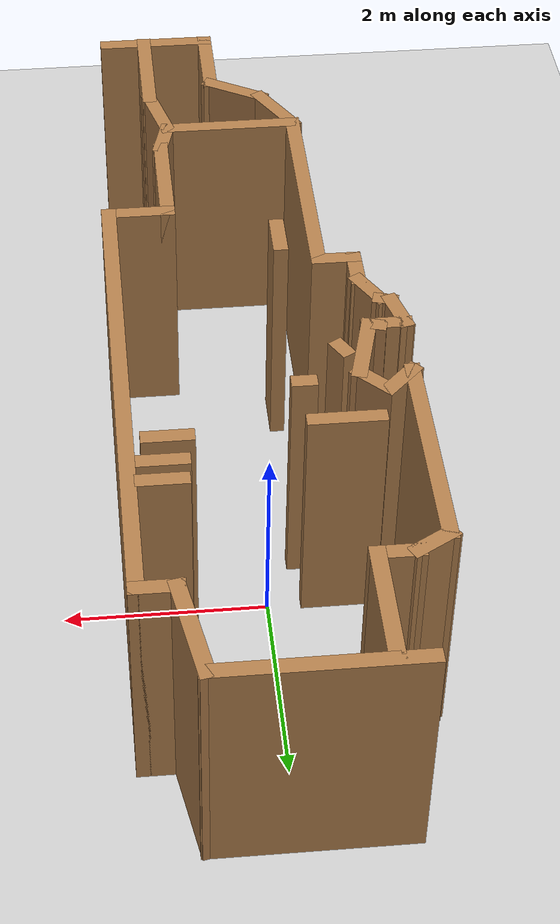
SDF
<sdf version="1.7">
 <world name="default">
  <light name="sun" type="directional">
   <pose>0 0 10 0 -0 0</pose>
   <diffuse>0.8 0.8 0.8 1</diffuse>
   <specular>0.2 0.2 0.2 1</specular>
   <attenuation>
    <range>1000</range>
    <constant>0.9</constant>
    <linear>0.01</linear>
    <quadratic>0.001</quadratic>
   </attenuation>
   <direction>-0.5 0.1 -0.9</direction>
   <spot><inner_angle>0</inner_angle><outer_angle>0</outer_angle><falloff>0</falloff></spot>
  </light>
  <model name="ground_plane">
   <static>1</static>
   <link name="link">
    <collision name="collision">
     <geometry><plane><normal>0 0 1</normal><size>100 100</size></plane></geometry>
     <surface>
      <contact><collide_bitmask>65535</collide_bitmask></contact>
      <friction><ode><mu>100</mu><mu2>50</mu2></ode></friction>
     </surface>
    </collision>
    <visual name="visual">
     <cast_shadows>0</cast_shadows>
     <geometry><plane><normal>0 0 1</normal><size>100 100</size></plane></geometry>
     <material>
      <script><uri>file://media/materials/scripts/gazebo.material</uri><name>Gazebo/Grey</name></script>
     </material>
    </visual>
   </link>
  </model>
  <gravity>0 0 -9.8</gravity>
  <magnetic_field>6e-06 2.3e-05 -4.2e-05</magnetic_field>
  <atmosphere type="adiabatic"/>
  <physics name="default_physics" default="0" type="ode">
   <max_step_size>0.001</max_step_size>
   <real_time_factor>1</real_time_factor>
   <real_time_update_rate>1000</real_time_update_rate>
  </physics>
  <scene><ambient>0.4 0.4 0.4 1</ambient><background>0.7 0.7 0.7 1</background><shadows>1</shadows></scene>
  <audio><device>default</device></audio>
  <spherical_coordinates>
   <surface_model>EARTH_WGS84</surface_model>
   <latitude_deg>0</latitude_deg>
   <longitude_deg>0</longitude_deg>
   <elevation>0</elevation>
   <heading_deg>0</heading_deg>
  </spherical_coordinates>
  <model name="map_12">
   <pose>-0.061819 -1.77159 0 0 -0 0</pose>
   <link name="Wall_0">
    <collision name="Wall_0_Collision">
     <geometry><box><size>2 0.15 2.5</size></box></geometry>
     <pose>0 0 1.25 0 -0 0</pose>
    </collision>
    <visual name="Wall_0_Visual">
     <pose>0 0 1.25 0 -0 0</pose>
     <geometry><box><size>2 0.15 2.5</size></box></geometry>
     <material>
      <script><uri>file://media/materials/scripts/gazebo.material</uri><name>Gazebo/Wood</name></script>
      <ambient>1 1 1 1</ambient>
     </material>
     <meta><layer>0</layer></meta>
    </visual>
    <pose>-0.059299 4.57153 0 0 -0 3.14159</pose>
   </link>
   <link name="Wall_14">
    <collision name="Wall_14_Collision">
     <geometry><box><size>0.5 0.15 2.5</size></box></geometry>
     <pose>0 0 1.25 0 -0 0</pose>
    </collision>
    <visual name="Wall_14_Visual">
     <pose>0 0 1.25 0 -0 0</pose>
     <geometry><box><size>0.5 0.15 2.5</size></box></geometry>
     <material>
      <script><uri>file://media/materials/scripts/gazebo.material</uri><name>Gazebo/Wood</name></script>
      <ambient>1 1 1 1</ambient>
     </material>
     <meta><layer>0</layer></meta>
    </visual>
    <pose>-1.21241 1.25993 0 0 -0 0.785398</pose>
   </link>
   <link name="Wall_15">
    <collision name="Wall_15_Collision">
     <geometry><box><size>0.5 0.15 2.5</size></box></geometry>
     <pose>0 0 1.25 0 -0 0</pose>
    </collision>
    <visual name="Wall_15_Visual">
     <pose>0 0 1.25 0 -0 0</pose>
     <geometry><box><size>0.5 0.15 2.5</size></box></geometry>
     <material>
      <script><uri>file://media/materials/scripts/gazebo.material</uri><name>Gazebo/Wood</name></script>
      <ambient>1 1 1 1</ambient>
     </material>
     <meta><layer>0</layer></meta>
    </visual>
    <pose>-0.964922 1.25993 0 0 -0 -0.785398</pose>
   </link>
   <link name="Wall_16">
    <collision name="Wall_16_Collision">
     <geometry><box><size>0.846046 0.15 2.5</size></box></geometry>
     <pose>0 0 1.25 0 -0 0</pose>
    </collision>
    <visual name="Wall_16_Visual">
     <pose>0 0 1.25 0 -0 0</pose>
     <geometry><box><size>0.846046 0.15 2.5</size></box></geometry>
     <material>
      <script><uri>file://media/materials/scripts/gazebo.material</uri><name>Gazebo/Wood</name></script>
      <ambient>1 1 1 1</ambient>
     </material>
     <meta><layer>0</layer></meta>
    </visual>
    <pose>-0.929567 0.799579 0 0 -0 -1.82758</pose>
   </link>
   <link name="Wall_19">
    <collision name="Wall_19_Collision">
     <geometry><box><size>0.5 0.15 2.5</size></box></geometry>
     <pose>0 0 1.25 0 -0 0</pose>
    </collision>
    <visual name="Wall_19_Visual">
     <pose>0 0 1.25 0 -0 0</pose>
     <geometry><box><size>0.5 0.15 2.5</size></box></geometry>
     <material>
      <script><uri>file://media/materials/scripts/gazebo.material</uri><name>Gazebo/Wood</name></script>
      <ambient>1 1 1 1</ambient>
     </material>
     <meta><layer>0</layer></meta>
    </visual>
    <pose>-1.19295 0.462967 0 0 -0 3.14159</pose>
   </link>
   <link name="Wall_2">
    <collision name="Wall_2_Collision">
     <geometry><box><size>1.25 0.15 2.5</size></box></geometry>
     <pose>0 0 1.25 0 -0 0</pose>
    </collision>
    <visual name="Wall_2_Visual">
     <pose>0 0 1.25 0 -0 0</pose>
     <geometry><box><size>1.25 0.15 2.5</size></box></geometry>
     <material>
      <script><uri>file://media/materials/scripts/gazebo.material</uri><name>Gazebo/Wood</name></script>
      <ambient>1 1 1 1</ambient>
     </material>
     <meta><layer>0</layer></meta>
    </visual>
    <pose>-0.683044 3.96119 0 0 -0 -1.5708</pose>
   </link>
   <link name="Wall_20">
    <collision name="Wall_20_Collision">
     <geometry><box><size>0.5 0.15 2.5</size></box></geometry>
     <pose>0 0 1.25 0 -0 0</pose>
    </collision>
    <visual name="Wall_20_Visual">
     <pose>0 0 1.25 0 -0 0</pose>
     <geometry><box><size>0.5 0.15 2.5</size></box></geometry>
     <material>
      <script><uri>file://media/materials/scripts/gazebo.material</uri><name>Gazebo/Wood</name></script>
      <ambient>1 1 1 1</ambient>
     </material>
     <meta><layer>0</layer></meta>
    </visual>
    <pose>-1.32266 0.29393 0 0 -0 -1.309</pose>
   </link>
   <link name="Wall_21">
    <collision name="Wall_21_Collision">
     <geometry><box><size>0.25 0.15 2.5</size></box></geometry>
     <pose>0 0 1.25 0 -0 0</pose>
    </collision>
    <visual name="Wall_21_Visual">
     <pose>0 0 1.25 0 -0 0</pose>
     <geometry><box><size>0.25 0.15 2.5</size></box></geometry>
     <material>
      <script><uri>file://media/materials/scripts/gazebo.material</uri><name>Gazebo/Wood</name></script>
      <ambient>1 1 1 1</ambient>
     </material>
     <meta><layer>0</layer></meta>
    </visual>
    <pose>-1.22907 0.111952 0 0 -0 -0.261799</pose>
   </link>
   <link name="Wall_22">
    <collision name="Wall_22_Collision">
     <geometry><box><size>0.5 0.15 2.5</size></box></geometry>
     <pose>0 0 1.25 0 -0 0</pose>
    </collision>
    <visual name="Wall_22_Visual">
     <pose>0 0 1.25 0 -0 0</pose>
     <geometry><box><size>0.5 0.15 2.5</size></box></geometry>
     <material>
      <script><uri>file://media/materials/scripts/gazebo.material</uri><name>Gazebo/Wood</name></script>
      <ambient>1 1 1 1</ambient>
     </material>
     <meta><layer>0</layer></meta>
    </visual>
    <pose>-1.09328 -0.052543 0 0 -0 -1.0472</pose>
   </link>
   <link name="Wall_23">
    <collision name="Wall_23_Collision">
     <geometry><box><size>0.5 0.15 2.5</size></box></geometry>
     <pose>0 0 1.25 0 -0 0</pose>
    </collision>
    <visual name="Wall_23_Visual">
     <pose>0 0 1.25 0 -0 0</pose>
     <geometry><box><size>0.5 0.15 2.5</size></box></geometry>
     <material>
      <script><uri>file://media/materials/scripts/gazebo.material</uri><name>Gazebo/Wood</name></script>
      <ambient>1 1 1 1</ambient>
     </material>
     <meta><layer>0</layer></meta>
    </visual>
    <pose>-1.00578 -0.379098 0 0 -0 -1.5708</pose>
   </link>
   <link name="Wall_24">
    <collision name="Wall_24_Collision">
     <geometry><box><size>0.5 0.15 2.5</size></box></geometry>
     <pose>0 0 1.25 0 -0 0</pose>
    </collision>
    <visual name="Wall_24_Visual">
     <pose>0 0 1.25 0 -0 0</pose>
     <geometry><box><size>0.5 0.15 2.5</size></box></geometry>
     <material>
      <script><uri>file://media/materials/scripts/gazebo.material</uri><name>Gazebo/Wood</name></script>
      <ambient>1 1 1 1</ambient>
     </material>
     <meta><layer>0</layer></meta>
    </visual>
    <pose>-0.830776 -0.554098 0 0 -0 0</pose>
   </link>
   <link name="Wall_25">
    <collision name="Wall_25_Collision">
     <geometry><box><size>2.5 0.15 2.5</size></box></geometry>
     <pose>0 0 1.25 0 -0 0</pose>
    </collision>
    <visual name="Wall_25_Visual">
     <pose>0 0 1.25 0 -0 0</pose>
     <geometry><box><size>2.5 0.15 2.5</size></box></geometry>
     <material>
      <script><uri>file://media/materials/scripts/gazebo.material</uri><name>Gazebo/Wood</name></script>
      <ambient>1 1 1 1</ambient>
     </material>
     <meta><layer>0</layer></meta>
    </visual>
    <pose>-0.655776 -1.7291 0 0 -0 -1.5708</pose>
   </link>
   <link name="Wall_26">
    <collision name="Wall_26_Collision">
     <geometry><box><size>1.5 0.15 2.5</size></box></geometry>
     <pose>0 0 1.25 0 -0 0</pose>
    </collision>
    <visual name="Wall_26_Visual">
     <pose>0 0 1.25 0 -0 0</pose>
     <geometry><box><size>1.5 0.15 2.5</size></box></geometry>
     <material>
      <script><uri>file://media/materials/scripts/gazebo.material</uri><name>Gazebo/Wood</name></script>
      <ambient>1 1 1 1</ambient>
     </material>
     <meta><layer>0</layer></meta>
    </visual>
    <pose>0.019224 -2.9041 0 0 -0 0</pose>
   </link>
   <link name="Wall_27">
    <collision name="Wall_27_Collision">
     <geometry><box><size>0.5 0.15 2.5</size></box></geometry>
     <pose>0 0 1.25 0 -0 0</pose>
    </collision>
    <visual name="Wall_27_Visual">
     <pose>0 0 1.25 0 -0 0</pose>
     <geometry><box><size>0.5 0.15 2.5</size></box></geometry>
     <material>
      <script><uri>file://media/materials/scripts/gazebo.material</uri><name>Gazebo/Wood</name></script>
      <ambient>1 1 1 1</ambient>
     </material>
     <meta><layer>0</layer></meta>
    </visual>
    <pose>0.739517 -2.73506 0 0 -0 1.309</pose>
   </link>
   <link name="Wall_28">
    <collision name="Wall_28_Collision">
     <geometry><box><size>1.25 0.15 2.5</size></box></geometry>
     <pose>0 0 1.25 0 -0 0</pose>
    </collision>
    <visual name="Wall_28_Visual">
     <pose>0 0 1.25 0 -0 0</pose>
     <geometry><box><size>1.25 0.15 2.5</size></box></geometry>
     <material>
      <script><uri>file://media/materials/scripts/gazebo.material</uri><name>Gazebo/Wood</name></script>
      <ambient>1 1 1 1</ambient>
     </material>
     <meta><layer>0</layer></meta>
    </visual>
    <pose>0.784811 -2.01602 0 0 -0 1.5708</pose>
   </link>
   <link name="Wall_3">
    <collision name="Wall_3_Collision">
     <geometry><box><size>0.5 0.15 2.5</size></box></geometry>
     <pose>0 0 1.25 0 -0 0</pose>
    </collision>
    <visual name="Wall_3_Visual">
     <pose>0 0 1.25 0 -0 0</pose>
     <geometry><box><size>0.5 0.15 2.5</size></box></geometry>
     <material>
      <script><uri>file://media/materials/scripts/gazebo.material</uri><name>Gazebo/Wood</name></script>
      <ambient>1 1 1 1</ambient>
     </material>
     <meta><layer>0</layer></meta>
    </visual>
    <pose>-0.858044 3.41119 0 0 -0 3.14159</pose>
   </link>
   <link name="Wall_33">
    <collision name="Wall_33_Collision">
     <geometry><box><size>0.75 0.15 2.5</size></box></geometry>
     <pose>0 0 1.25 0 -0 0</pose>
    </collision>
    <visual name="Wall_33_Visual">
     <pose>0 0 1.25 0 -0 0</pose>
     <geometry><box><size>0.75 0.15 2.5</size></box></geometry>
     <material>
      <script><uri>file://media/materials/scripts/gazebo.material</uri><name>Gazebo/Wood</name></script>
      <ambient>1 1 1 1</ambient>
     </material>
     <meta><layer>0</layer></meta>
    </visual>
    <pose>1.08481 -1.46602 0 0 -0 0</pose>
   </link>
   <link name="Wall_34">
    <collision name="Wall_34_Collision">
     <geometry><box><size>5.25 0.15 2.5</size></box></geometry>
     <pose>0 0 1.25 0 -0 0</pose>
    </collision>
    <visual name="Wall_34_Visual">
     <pose>0 0 1.25 0 -0 0</pose>
     <geometry><box><size>5.25 0.15 2.5</size></box></geometry>
     <material>
      <script><uri>file://media/materials/scripts/gazebo.material</uri><name>Gazebo/Wood</name></script>
      <ambient>1 1 1 1</ambient>
     </material>
     <meta><layer>0</layer></meta>
    </visual>
    <pose>1.38481 1.08398 0 0 -0 1.5708</pose>
   </link>
   <link name="Wall_35">
    <collision name="Wall_35_Collision">
     <geometry><box><size>0.5 0.15 2.5</size></box></geometry>
     <pose>0 0 1.25 0 -0 0</pose>
    </collision>
    <visual name="Wall_35_Visual">
     <pose>0 0 1.25 0 -0 0</pose>
     <geometry><box><size>0.5 0.15 2.5</size></box></geometry>
     <material>
      <script><uri>file://media/materials/scripts/gazebo.material</uri><name>Gazebo/Wood</name></script>
      <ambient>1 1 1 1</ambient>
     </material>
     <meta><layer>0</layer></meta>
    </visual>
    <pose>1.20981 3.63398 0 0 -0 3.14159</pose>
   </link>
   <link name="Wall_36">
    <collision name="Wall_36_Collision">
     <geometry><box><size>1.10268 0.15 2.5</size></box></geometry>
     <pose>0 0 1.25 0 -0 0</pose>
    </collision>
    <visual name="Wall_36_Visual">
     <pose>0 0 1.25 0 -0 0</pose>
     <geometry><box><size>1.10268 0.15 2.5</size></box></geometry>
     <material>
      <script><uri>file://media/materials/scripts/gazebo.material</uri><name>Gazebo/Wood</name></script>
      <ambient>1 1 1 1</ambient>
     </material>
     <meta><layer>0</layer></meta>
    </visual>
    <pose>0.950256 4.10275 0 0 -0 1.74925</pose>
   </link>
   <link name="Wall_39">
    <collision name="Wall_39_Collision">
     <geometry><box><size>0.75 0.15 2.5</size></box></geometry>
     <pose>0 0 1.25 0 -0 0</pose>
    </collision>
    <visual name="Wall_39_Visual">
     <pose>0 0 1.25 0 -0 0</pose>
     <geometry><box><size>0.75 0.15 2.5</size></box></geometry>
     <material>
      <script><uri>file://media/materials/scripts/gazebo.material</uri><name>Gazebo/Wood</name></script>
      <ambient>1 1 1 1</ambient>
     </material>
     <meta><layer>0</layer></meta>
    </visual>
    <pose>-0.505776 -3.16391 0 0 -0 -1.0472</pose>
   </link>
   <link name="Wall_4">
    <collision name="Wall_4_Collision">
     <geometry><box><size>0.5 0.15 2.5</size></box></geometry>
     <pose>0 0 1.25 0 -0 0</pose>
    </collision>
    <visual name="Wall_4_Visual">
     <pose>0 0 1.25 0 -0 0</pose>
     <geometry><box><size>0.5 0.15 2.5</size></box></geometry>
     <material>
      <script><uri>file://media/materials/scripts/gazebo.material</uri><name>Gazebo/Wood</name></script>
      <ambient>1 1 1 1</ambient>
     </material>
     <meta><layer>0</layer></meta>
    </visual>
    <pose>-1.1846 3.32369 0 0 -0 -2.61799</pose>
   </link>
   <link name="Wall_40">
    <collision name="Wall_40_Collision">
     <geometry><box><size>0.75 0.15 2.5</size></box></geometry>
     <pose>0 0 1.25 0 -0 0</pose>
    </collision>
    <visual name="Wall_40_Visual">
     <pose>0 0 1.25 0 -0 0</pose>
     <geometry><box><size>0.75 0.15 2.5</size></box></geometry>
     <material>
      <script><uri>file://media/materials/scripts/gazebo.material</uri><name>Gazebo/Wood</name></script>
      <ambient>1 1 1 1</ambient>
     </material>
     <meta><layer>0</layer></meta>
    </visual>
    <pose>-0.095968 -3.57371 0 0 -0 -0.523599</pose>
   </link>
   <link name="Wall_41">
    <collision name="Wall_41_Collision">
     <geometry><box><size>1 0.15 2.5</size></box></geometry>
     <pose>0 0 1.25 0 -0 0</pose>
    </collision>
    <visual name="Wall_41_Visual">
     <pose>0 0 1.25 0 -0 0</pose>
     <geometry><box><size>1 0.15 2.5</size></box></geometry>
     <material>
      <script><uri>file://media/materials/scripts/gazebo.material</uri><name>Gazebo/Wood</name></script>
      <ambient>1 1 1 1</ambient>
     </material>
     <meta><layer>0</layer></meta>
    </visual>
    <pose>0.163839 -4.14871 0 0 -0 -1.5708</pose>
   </link>
   <link name="Wall_42">
    <collision name="Wall_42_Collision">
     <geometry><box><size>1.25 0.15 2.5</size></box></geometry>
     <pose>0 0 1.25 0 -0 0</pose>
    </collision>
    <visual name="Wall_42_Visual">
     <pose>0 0 1.25 0 -0 0</pose>
     <geometry><box><size>1.25 0.15 2.5</size></box></geometry>
     <material>
      <script><uri>file://media/materials/scripts/gazebo.material</uri><name>Gazebo/Wood</name></script>
      <ambient>1 1 1 1</ambient>
     </material>
     <meta><layer>0</layer></meta>
    </visual>
    <pose>0.713839 -4.57371 0 0 -0 0</pose>
   </link>
   <link name="Wall_44">
    <collision name="Wall_44_Collision">
     <geometry><box><size>0.75 0.15 2.5</size></box></geometry>
     <pose>0 0 1.25 0 -0 0</pose>
    </collision>
    <visual name="Wall_44_Visual">
     <pose>0 0 1.25 0 -0 0</pose>
     <geometry><box><size>0.75 0.15 2.5</size></box></geometry>
     <material>
      <script><uri>file://media/materials/scripts/gazebo.material</uri><name>Gazebo/Wood</name></script>
      <ambient>1 1 1 1</ambient>
     </material>
     <meta><layer>0</layer></meta>
    </visual>
    <pose>0.77187 -3.19388 0 0 -0 -1.309</pose>
   </link>
   <link name="Wall_45">
    <collision name="Wall_45_Collision">
     <geometry><box><size>1.25 0.15 2.5</size></box></geometry>
     <pose>0 0 1.25 0 -0 0</pose>
    </collision>
    <visual name="Wall_45_Visual">
     <pose>0 0 1.25 0 -0 0</pose>
     <geometry><box><size>1.25 0.15 2.5</size></box></geometry>
     <material>
      <script><uri>file://media/materials/scripts/gazebo.material</uri><name>Gazebo/Wood</name></script>
      <ambient>1 1 1 1</ambient>
     </material>
     <meta><layer>0</layer></meta>
    </visual>
    <pose>0.849515 -4.03365 0 0 -0 -1.5708</pose>
   </link>
   <link name="Wall_47">
    <collision name="Wall_47_Collision">
     <geometry><box><size>0.5 0.15 2.5</size></box></geometry>
     <pose>0 0 1.25 0 -0 0</pose>
    </collision>
    <visual name="Wall_47_Visual">
     <pose>0 0 1.25 0 -0 0</pose>
     <geometry><box><size>0.5 0.15 2.5</size></box></geometry>
     <material>
      <script><uri>file://media/materials/scripts/gazebo.material</uri><name>Gazebo/Wood</name></script>
      <ambient>1 1 1 1</ambient>
     </material>
     <meta><layer>0</layer></meta>
    </visual>
    <pose>1.08093 2.37915 0 0 -0 0</pose>
   </link>
   <link name="Wall_5">
    <collision name="Wall_5_Collision">
     <geometry><box><size>2.25 0.15 2.5</size></box></geometry>
     <pose>0 0 1.25 0 -0 0</pose>
    </collision>
    <visual name="Wall_5_Visual">
     <pose>0 0 1.25 0 -0 0</pose>
     <geometry><box><size>2.25 0.15 2.5</size></box></geometry>
     <material>
      <script><uri>file://media/materials/scripts/gazebo.material</uri><name>Gazebo/Wood</name></script>
      <ambient>1 1 1 1</ambient>
     </material>
     <meta><layer>0</layer></meta>
    </visual>
    <pose>-1.33615 2.18619 0 0 -0 -1.5708</pose>
   </link>
   <link name="Wall_50">
    <collision name="Wall_50_Collision">
     <geometry><box><size>0.5 0.15 2.5</size></box></geometry>
     <pose>0 0 1.25 0 -0 0</pose>
    </collision>
    <visual name="Wall_50_Visual">
     <pose>0 0 1.25 0 -0 0</pose>
     <geometry><box><size>0.5 0.15 2.5</size></box></geometry>
     <material>
      <script><uri>file://media/materials/scripts/gazebo.material</uri><name>Gazebo/Wood</name></script>
      <ambient>1 1 1 1</ambient>
     </material>
     <meta><layer>0</layer></meta>
    </visual>
    <pose>1.06081 2.13779 0 0 -0 0</pose>
   </link>
   <link name="Wall_53">
    <collision name="Wall_53_Collision">
     <geometry><box><size>0.5 0.15 2.5</size></box></geometry>
     <pose>0 0 1.25 0 -0 0</pose>
    </collision>
    <visual name="Wall_53_Visual">
     <pose>0 0 1.25 0 -0 0</pose>
     <geometry><box><size>0.5 0.15 2.5</size></box></geometry>
     <material>
      <script><uri>file://media/materials/scripts/gazebo.material</uri><name>Gazebo/Wood</name></script>
      <ambient>1 1 1 1</ambient>
     </material>
     <meta><layer>0</layer></meta>
    </visual>
    <pose>1.00047 1.83608 0 0 -0 0</pose>
   </link>
   <link name="Wall_56">
    <collision name="Wall_56_Collision">
     <geometry><box><size>0.75 0.15 2.5</size></box></geometry>
     <pose>0 0 1.25 0 -0 0</pose>
    </collision>
    <visual name="Wall_56_Visual">
     <pose>0 0 1.25 0 -0 0</pose>
     <geometry><box><size>0.75 0.15 2.5</size></box></geometry>
     <material>
      <script><uri>file://media/materials/scripts/gazebo.material</uri><name>Gazebo/Wood</name></script>
      <ambient>1 1 1 1</ambient>
     </material>
     <meta><layer>0</layer></meta>
    </visual>
    <pose>-0.644521 1.73552 0 0 -0 0</pose>
   </link>
   <link name="Wall_58">
    <collision name="Wall_58_Collision">
     <geometry><box><size>0.5 0.15 2.5</size></box></geometry>
     <pose>0 0 1.25 0 -0 0</pose>
    </collision>
    <visual name="Wall_58_Visual">
     <pose>0 0 1.25 0 -0 0</pose>
     <geometry><box><size>0.5 0.15 2.5</size></box></geometry>
     <material>
      <script><uri>file://media/materials/scripts/gazebo.material</uri><name>Gazebo/Wood</name></script>
      <ambient>1 1 1 1</ambient>
     </material>
     <meta><layer>0</layer></meta>
    </visual>
    <pose>-0.300887 -0.973793 0 0 -0 -1.5708</pose>
   </link>
   <link name="Wall_61">
    <collision name="Wall_61_Collision">
     <geometry><box><size>0.25 0.15 2.5</size></box></geometry>
     <pose>0 0 1.25 0 -0 0</pose>
    </collision>
    <visual name="Wall_61_Visual">
     <pose>0 0 1.25 0 -0 0</pose>
     <geometry><box><size>0.25 0.15 2.5</size></box></geometry>
     <material>
      <script><uri>file://media/materials/scripts/gazebo.material</uri><name>Gazebo/Wood</name></script>
      <ambient>1 1 1 1</ambient>
     </material>
     <meta><layer>0</layer></meta>
    </visual>
    <pose>-0.310659 1.21256 0 0 -0 3.14159</pose>
   </link>
   <link name="Wall_63">
    <collision name="Wall_63_Collision">
     <geometry><box><size>0.25 0.15 2.5</size></box></geometry>
     <pose>0 0 1.25 0 -0 0</pose>
    </collision>
    <visual name="Wall_63_Visual">
     <pose>0 0 1.25 0 -0 0</pose>
     <geometry><box><size>0.25 0.15 2.5</size></box></geometry>
     <material>
      <script><uri>file://media/materials/scripts/gazebo.material</uri><name>Gazebo/Wood</name></script>
      <ambient>1 1 1 1</ambient>
     </material>
     <meta><layer>0</layer></meta>
    </visual>
    <pose>-0.718385 0.787106 0 0 -0 -1.0472</pose>
   </link>
   <link name="Wall_9">
    <collision name="Wall_9_Collision">
     <geometry><box><size>0.25 0.15 2.5</size></box></geometry>
     <pose>0 0 1.25 0 -0 0</pose>
    </collision>
    <visual name="Wall_9_Visual">
     <pose>0 0 1.25 0 -0 0</pose>
     <geometry><box><size>0.25 0.15 2.5</size></box></geometry>
     <material>
      <script><uri>file://media/materials/scripts/gazebo.material</uri><name>Gazebo/Wood</name></script>
      <ambient>1 1 1 1</ambient>
     </material>
     <meta><layer>0</layer></meta>
    </visual>
    <pose>-1.06625 0.475908 0 0 -0 2.87979</pose>
   </link>
   <static>1</static>
  </model>
 </world>
</sdf>
